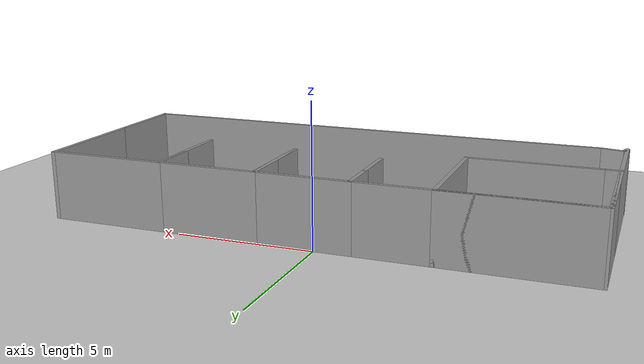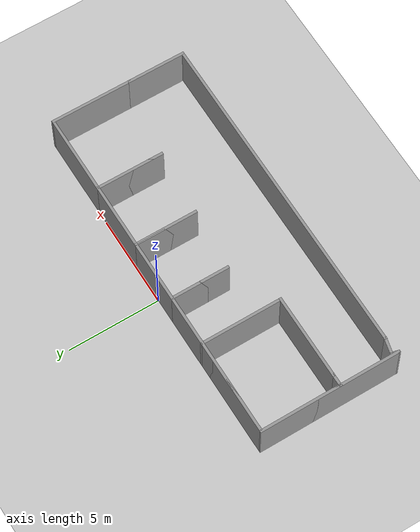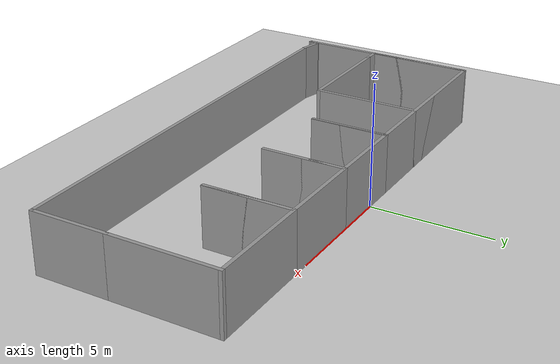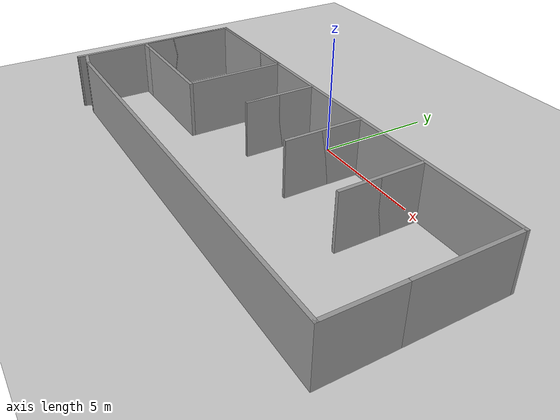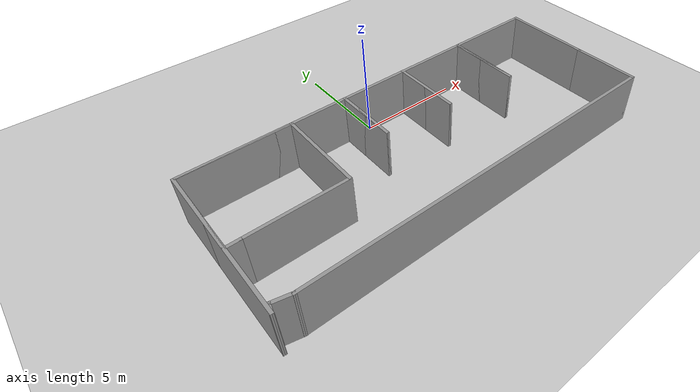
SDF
<sdf version="1.6">
 <world name="default">
  <light name="sun" type="directional">
   <pose>0 0 10 0 -0 0</pose>
   <diffuse>0.8 0.8 0.8 1</diffuse>
   <specular>0.2 0.2 0.2 1</specular>
   <attenuation>
    <range>1000</range>
    <constant>0.9</constant>
    <linear>0.01</linear>
    <quadratic>0.001</quadratic>
   </attenuation>
   <direction>-0.5 0.1 -0.9</direction>
  </light>
  <model name="ground_plane">
   <static>1</static>
   <link name="link">
    <collision name="collision">
     <geometry><plane><normal>0 0 1</normal><size>100 100</size></plane></geometry>
     <surface><friction><ode><mu>100</mu><mu2>50</mu2></ode></friction></surface>
    </collision>
    <visual name="visual">
     <cast_shadows>0</cast_shadows>
     <geometry><plane><normal>0 0 1</normal><size>100 100</size></plane></geometry>
     <material>
      <script><uri>file://media/materials/scripts/gazebo.material</uri><name>Gazebo/Grey</name></script>
     </material>
    </visual>
   </link>
  </model>
  <gravity>0 0 -9.8</gravity>
  <magnetic_field>6e-06 2.3e-05 -4.2e-05</magnetic_field>
  <atmosphere type="adiabatic"/>
  <physics name="default_physics" default="0" type="ode">
   <max_step_size>0.001</max_step_size>
   <real_time_factor>1</real_time_factor>
   <real_time_update_rate>1000</real_time_update_rate>
  </physics>
  <scene><ambient>0.4 0.4 0.4 1</ambient><background>0.7 0.7 0.7 1</background><shadows>1</shadows></scene>
  <spherical_coordinates>
   <surface_model>EARTH_WGS84</surface_model>
   <latitude_deg>0</latitude_deg>
   <longitude_deg>0</longitude_deg>
   <elevation>0</elevation>
   <heading_deg>0</heading_deg>
  </spherical_coordinates>
  <model name="Single_Hall_Map">
   <pose>0.413087 -3.56418 0 0 -0 0</pose>
   <link name="Wall_11">
    <collision name="Wall_11_Collision">
     <geometry><box><size>18.5 0.15 2.5</size></box></geometry>
     <pose>0 0 1.25 0 -0 0</pose>
    </collision>
    <visual name="Wall_11_Visual">
     <pose>0 0 1.25 0 -0 0</pose>
     <geometry><box><size>18.5 0.15 2.5</size></box></geometry>
     <material>
      <script><uri>file://media/materials/scripts/gazebo.material</uri><name>Gazebo/Grey</name></script>
      <ambient>1 1 1 1</ambient>
     </material>
     <meta><layer>0</layer></meta>
    </visual>
    <pose>0.458428 -3.95514 0 0 -0 0</pose>
   </link>
   <link name="Wall_12">
    <collision name="Wall_12_Collision">
     <geometry><box><size>3.25 0.15 2.5</size></box></geometry>
     <pose>0 0 1.25 0 -0 0</pose>
    </collision>
    <visual name="Wall_12_Visual">
     <pose>0 0 1.25 0 -0 0</pose>
     <geometry><box><size>3.25 0.15 2.5</size></box></geometry>
     <material>
      <script><uri>file://media/materials/scripts/gazebo.material</uri><name>Gazebo/Grey</name></script>
      <ambient>1 1 1 1</ambient>
     </material>
     <meta><layer>0</layer></meta>
    </visual>
    <pose>9.63343 -2.40514 0 0 -0 1.5708</pose>
   </link>
   <link name="Wall_13">
    <collision name="Wall_13_Collision">
     <geometry><box><size>4.5 0.15 2.5</size></box></geometry>
     <pose>0 0 1.25 0 -0 0</pose>
    </collision>
    <visual name="Wall_13_Visual">
     <pose>0 0 1.25 0 -0 0</pose>
     <geometry><box><size>4.5 0.15 2.5</size></box></geometry>
     <material>
      <script><uri>file://media/materials/scripts/gazebo.material</uri><name>Gazebo/Grey</name></script>
      <ambient>1 1 1 1</ambient>
     </material>
     <meta><layer>0</layer></meta>
    </visual>
    <pose>9.63343 1.31986 0 0 -0 1.5708</pose>
   </link>
   <link name="Wall_14">
    <collision name="Wall_14_Collision">
     <geometry><box><size>4.5 0.15 2.5</size></box></geometry>
     <pose>0 0 1.25 0 -0 0</pose>
    </collision>
    <visual name="Wall_14_Visual">
     <pose>0 0 1.25 0 -0 0</pose>
     <geometry><box><size>4.5 0.15 2.5</size></box></geometry>
     <material>
      <script><uri>file://media/materials/scripts/gazebo.material</uri><name>Gazebo/Grey</name></script>
      <ambient>1 1 1 1</ambient>
     </material>
     <meta><layer>0</layer></meta>
    </visual>
    <pose>7.45843 3.49486 0 0 -0 3.14159</pose>
   </link>
   <link name="Wall_15">
    <collision name="Wall_15_Collision">
     <geometry><box><size>3.75 0.15 2.5</size></box></geometry>
     <pose>0 0 1.25 0 -0 0</pose>
    </collision>
    <visual name="Wall_15_Visual">
     <pose>0 0 1.25 0 -0 0</pose>
     <geometry><box><size>3.75 0.15 2.5</size></box></geometry>
     <material>
      <script><uri>file://media/materials/scripts/gazebo.material</uri><name>Gazebo/Grey</name></script>
      <ambient>1 1 1 1</ambient>
     </material>
     <meta><layer>0</layer></meta>
    </visual>
    <pose>5.28343 1.69486 0 0 -0 -1.5708</pose>
   </link>
   <link name="Wall_16">
    <collision name="Wall_16_Collision">
     <geometry><box><size>3.75 0.15 2.5</size></box></geometry>
     <pose>0 0 1.25 0 -0 0</pose>
    </collision>
    <visual name="Wall_16_Visual">
     <pose>0 0 1.25 0 -0 0</pose>
     <geometry><box><size>3.75 0.15 2.5</size></box></geometry>
     <material>
      <script><uri>file://media/materials/scripts/gazebo.material</uri><name>Gazebo/Grey</name></script>
      <ambient>1 1 1 1</ambient>
     </material>
     <meta><layer>0</layer></meta>
    </visual>
    <pose>5.28343 1.69486 0 0 -0 1.5708</pose>
   </link>
   <link name="Wall_17">
    <collision name="Wall_17_Collision">
     <geometry><box><size>3.75 0.15 2.5</size></box></geometry>
     <pose>0 0 1.25 0 -0 0</pose>
    </collision>
    <visual name="Wall_17_Visual">
     <pose>0 0 1.25 0 -0 0</pose>
     <geometry><box><size>3.75 0.15 2.5</size></box></geometry>
     <material>
      <script><uri>file://media/materials/scripts/gazebo.material</uri><name>Gazebo/Grey</name></script>
      <ambient>1 1 1 1</ambient>
     </material>
     <meta><layer>0</layer></meta>
    </visual>
    <pose>3.48343 3.49486 0 0 -0 3.14159</pose>
   </link>
   <link name="Wall_18">
    <collision name="Wall_18_Collision">
     <geometry><box><size>3.5 0.15 2.5</size></box></geometry>
     <pose>0 0 1.25 0 -0 0</pose>
    </collision>
    <visual name="Wall_18_Visual">
     <pose>0 0 1.25 0 -0 0</pose>
     <geometry><box><size>3.5 0.15 2.5</size></box></geometry>
     <material>
      <script><uri>file://media/materials/scripts/gazebo.material</uri><name>Gazebo/Grey</name></script>
      <ambient>1 1 1 1</ambient>
     </material>
     <meta><layer>0</layer></meta>
    </visual>
    <pose>1.68343 1.81986 0 0 -0 -1.5708</pose>
   </link>
   <link name="Wall_19">
    <collision name="Wall_19_Collision">
     <geometry><box><size>3.5 0.15 2.5</size></box></geometry>
     <pose>0 0 1.25 0 -0 0</pose>
    </collision>
    <visual name="Wall_19_Visual">
     <pose>0 0 1.25 0 -0 0</pose>
     <geometry><box><size>3.5 0.15 2.5</size></box></geometry>
     <material>
      <script><uri>file://media/materials/scripts/gazebo.material</uri><name>Gazebo/Grey</name></script>
      <ambient>1 1 1 1</ambient>
     </material>
     <meta><layer>0</layer></meta>
    </visual>
    <pose>1.68343 1.81986 0 0 -0 1.5708</pose>
   </link>
   <link name="Wall_20">
    <collision name="Wall_20_Collision">
     <geometry><box><size>3.5 0.15 2.5</size></box></geometry>
     <pose>0 0 1.25 0 -0 0</pose>
    </collision>
    <visual name="Wall_20_Visual">
     <pose>0 0 1.25 0 -0 0</pose>
     <geometry><box><size>3.5 0.15 2.5</size></box></geometry>
     <material>
      <script><uri>file://media/materials/scripts/gazebo.material</uri><name>Gazebo/Grey</name></script>
      <ambient>1 1 1 1</ambient>
     </material>
     <meta><layer>0</layer></meta>
    </visual>
    <pose>0.008428 3.49486 0 0 -0 3.14159</pose>
   </link>
   <link name="Wall_21">
    <collision name="Wall_21_Collision">
     <geometry><box><size>3.25 0.15 2.5</size></box></geometry>
     <pose>0 0 1.25 0 -0 0</pose>
    </collision>
    <visual name="Wall_21_Visual">
     <pose>0 0 1.25 0 -0 0</pose>
     <geometry><box><size>3.25 0.15 2.5</size></box></geometry>
     <material>
      <script><uri>file://media/materials/scripts/gazebo.material</uri><name>Gazebo/Grey</name></script>
      <ambient>1 1 1 1</ambient>
     </material>
     <meta><layer>0</layer></meta>
    </visual>
    <pose>-1.66657 1.94486 0 0 -0 -1.5708</pose>
   </link>
   <link name="Wall_22">
    <collision name="Wall_22_Collision">
     <geometry><box><size>3.25 0.15 2.5</size></box></geometry>
     <pose>0 0 1.25 0 -0 0</pose>
    </collision>
    <visual name="Wall_22_Visual">
     <pose>0 0 1.25 0 -0 0</pose>
     <geometry><box><size>3.25 0.15 2.5</size></box></geometry>
     <material>
      <script><uri>file://media/materials/scripts/gazebo.material</uri><name>Gazebo/Grey</name></script>
      <ambient>1 1 1 1</ambient>
     </material>
     <meta><layer>0</layer></meta>
    </visual>
    <pose>-1.66657 1.94486 0 0 -0 1.5708</pose>
   </link>
   <link name="Wall_23">
    <collision name="Wall_23_Collision">
     <geometry><box><size>8 0.15 2.5</size></box></geometry>
     <pose>0 0 1.25 0 -0 0</pose>
    </collision>
    <visual name="Wall_23_Visual">
     <pose>0 0 1.25 0 -0 0</pose>
     <geometry><box><size>8 0.15 2.5</size></box></geometry>
     <material>
      <script><uri>file://media/materials/scripts/gazebo.material</uri><name>Gazebo/Grey</name></script>
      <ambient>1 1 1 1</ambient>
     </material>
     <meta><layer>0</layer></meta>
    </visual>
    <pose>-5.59157 3.49486 0 0 -0 3.14159</pose>
   </link>
   <link name="Wall_24">
    <collision name="Wall_24_Collision">
     <geometry><box><size>5.25 0.15 2.5</size></box></geometry>
     <pose>0 0 1.25 0 -0 0</pose>
    </collision>
    <visual name="Wall_24_Visual">
     <pose>0 0 1.25 0 -0 0</pose>
     <geometry><box><size>5.25 0.15 2.5</size></box></geometry>
     <material>
      <script><uri>file://media/materials/scripts/gazebo.material</uri><name>Gazebo/Grey</name></script>
      <ambient>1 1 1 1</ambient>
     </material>
     <meta><layer>0</layer></meta>
    </visual>
    <pose>-6.96657 3.49486 0 0 -0 0</pose>
   </link>
   <link name="Wall_25">
    <collision name="Wall_25_Collision">
     <geometry><box><size>4.5 0.15 2.5</size></box></geometry>
     <pose>0 0 1.25 0 -0 0</pose>
    </collision>
    <visual name="Wall_25_Visual">
     <pose>0 0 1.25 0 -0 0</pose>
     <geometry><box><size>4.5 0.15 2.5</size></box></geometry>
     <material>
      <script><uri>file://media/materials/scripts/gazebo.material</uri><name>Gazebo/Grey</name></script>
      <ambient>1 1 1 1</ambient>
     </material>
     <meta><layer>0</layer></meta>
    </visual>
    <pose>-4.41657 1.31986 0 0 -0 -1.5708</pose>
   </link>
   <link name="Wall_26">
    <collision name="Wall_26_Collision">
     <geometry><box><size>4.75 0.15 2.5</size></box></geometry>
     <pose>0 0 1.25 0 -0 0</pose>
    </collision>
    <visual name="Wall_26_Visual">
     <pose>0 0 1.25 0 -0 0</pose>
     <geometry><box><size>4.75 0.15 2.5</size></box></geometry>
     <material>
      <script><uri>file://media/materials/scripts/gazebo.material</uri><name>Gazebo/Grey</name></script>
      <ambient>1 1 1 1</ambient>
     </material>
     <meta><layer>0</layer></meta>
    </visual>
    <pose>-6.71657 -0.855144 0 0 -0 3.14159</pose>
   </link>
   <link name="Wall_27">
    <collision name="Wall_27_Collision">
     <geometry><box><size>0.75 0.15 2.5</size></box></geometry>
     <pose>0 0 1.25 0 -0 0</pose>
    </collision>
    <visual name="Wall_27_Visual">
     <pose>0 0 1.25 0 -0 0</pose>
     <geometry><box><size>0.75 0.15 2.5</size></box></geometry>
     <material>
      <script><uri>file://media/materials/scripts/gazebo.material</uri><name>Gazebo/Grey</name></script>
      <ambient>1 1 1 1</ambient>
     </material>
     <meta><layer>0</layer></meta>
    </visual>
    <pose>-9.31657 -0.855144 0 0 -0 3.14159</pose>
   </link>
   <link name="Wall_28">
    <collision name="Wall_28_Collision">
     <geometry><box><size>4.5 0.15 2.5</size></box></geometry>
     <pose>0 0 1.25 0 -0 0</pose>
    </collision>
    <visual name="Wall_28_Visual">
     <pose>0 0 1.25 0 -0 0</pose>
     <geometry><box><size>4.5 0.15 2.5</size></box></geometry>
     <material>
      <script><uri>file://media/materials/scripts/gazebo.material</uri><name>Gazebo/Grey</name></script>
      <ambient>1 1 1 1</ambient>
     </material>
     <meta><layer>0</layer></meta>
    </visual>
    <pose>-9.61657 1.31986 0 0 -0 1.5708</pose>
   </link>
   <link name="Wall_29">
    <collision name="Wall_29_Collision">
     <geometry><box><size>7.75 0.15 2.5</size></box></geometry>
     <pose>0 0 1.25 0 -0 0</pose>
    </collision>
    <visual name="Wall_29_Visual">
     <pose>0 0 1.25 0 -0 0</pose>
     <geometry><box><size>7.75 0.15 2.5</size></box></geometry>
     <material>
      <script><uri>file://media/materials/scripts/gazebo.material</uri><name>Gazebo/Grey</name></script>
      <ambient>1 1 1 1</ambient>
     </material>
     <meta><layer>0</layer></meta>
    </visual>
    <pose>-9.61657 -0.305144 0 0 -0 -1.5708</pose>
   </link>
   <link name="Wall_30">
    <collision name="Wall_30_Collision">
     <geometry><box><size>0.5 0.15 2.5</size></box></geometry>
     <pose>0 0 1.25 0 -0 0</pose>
    </collision>
    <visual name="Wall_30_Visual">
     <pose>0 0 1.25 0 -0 0</pose>
     <geometry><box><size>0.5 0.15 2.5</size></box></geometry>
     <material>
      <script><uri>file://media/materials/scripts/gazebo.material</uri><name>Gazebo/Grey</name></script>
      <ambient>1 1 1 1</ambient>
     </material>
     <meta><layer>0</layer></meta>
    </visual>
    <pose>-9.57128 -3.93611 0 0 -0 1.309</pose>
   </link>
   <link name="Wall_31">
    <collision name="Wall_31_Collision">
     <geometry><box><size>0.980976 0.15 2.5</size></box></geometry>
     <pose>0 0 1.25 0 -0 0</pose>
    </collision>
    <visual name="Wall_31_Visual">
     <pose>0 0 1.25 0 -0 0</pose>
     <geometry><box><size>0.980976 0.15 2.5</size></box></geometry>
     <material>
      <script><uri>file://media/materials/scripts/gazebo.material</uri><name>Gazebo/Grey</name></script>
      <ambient>1 1 1 1</ambient>
     </material>
     <meta><layer>0</layer></meta>
    </visual>
    <pose>-9.12128 -3.86111 0 0 -0 -0.228307</pose>
   </link>
   <static>1</static>
  </model>
 </world>
</sdf>
